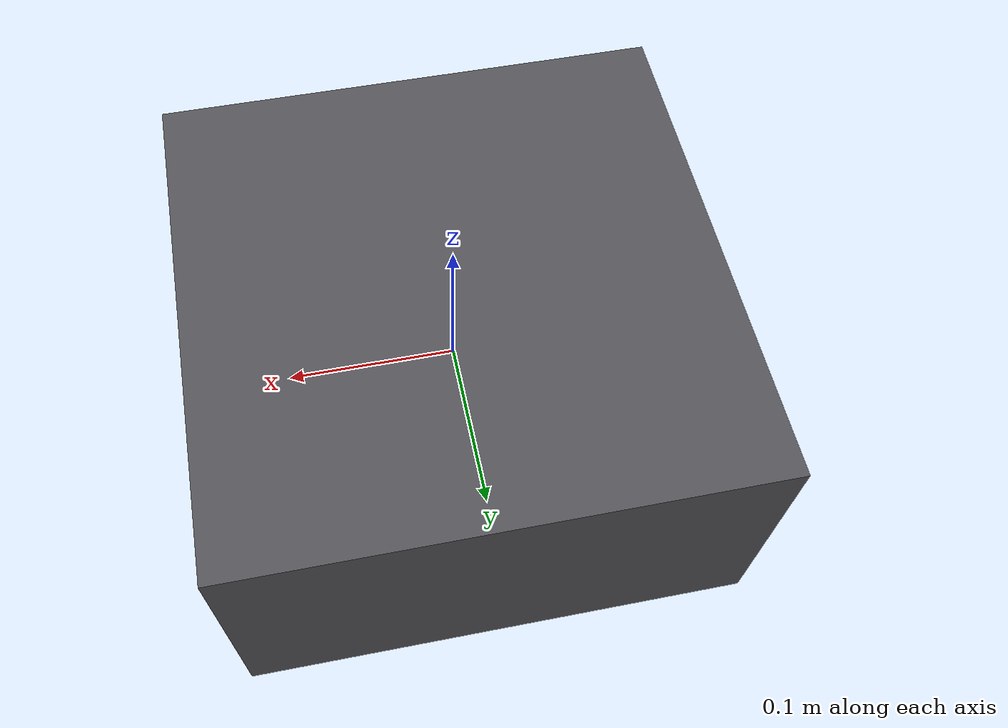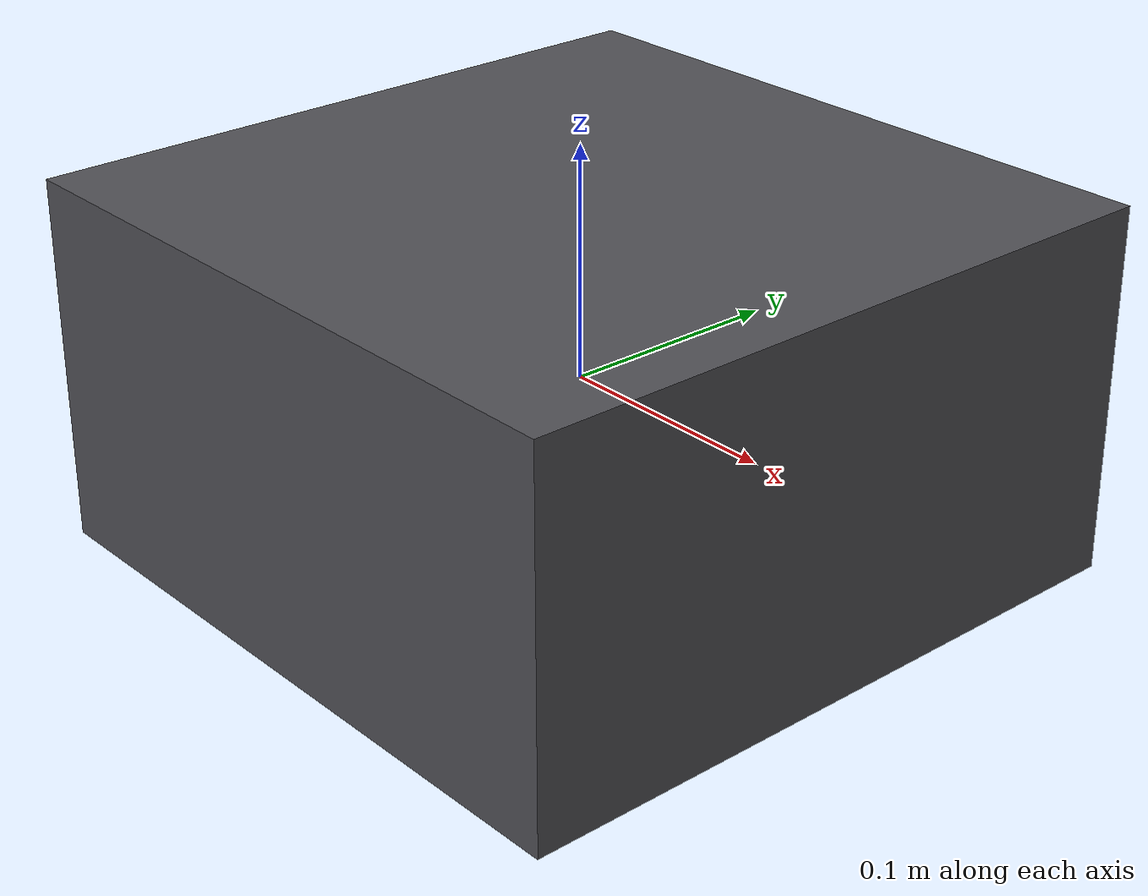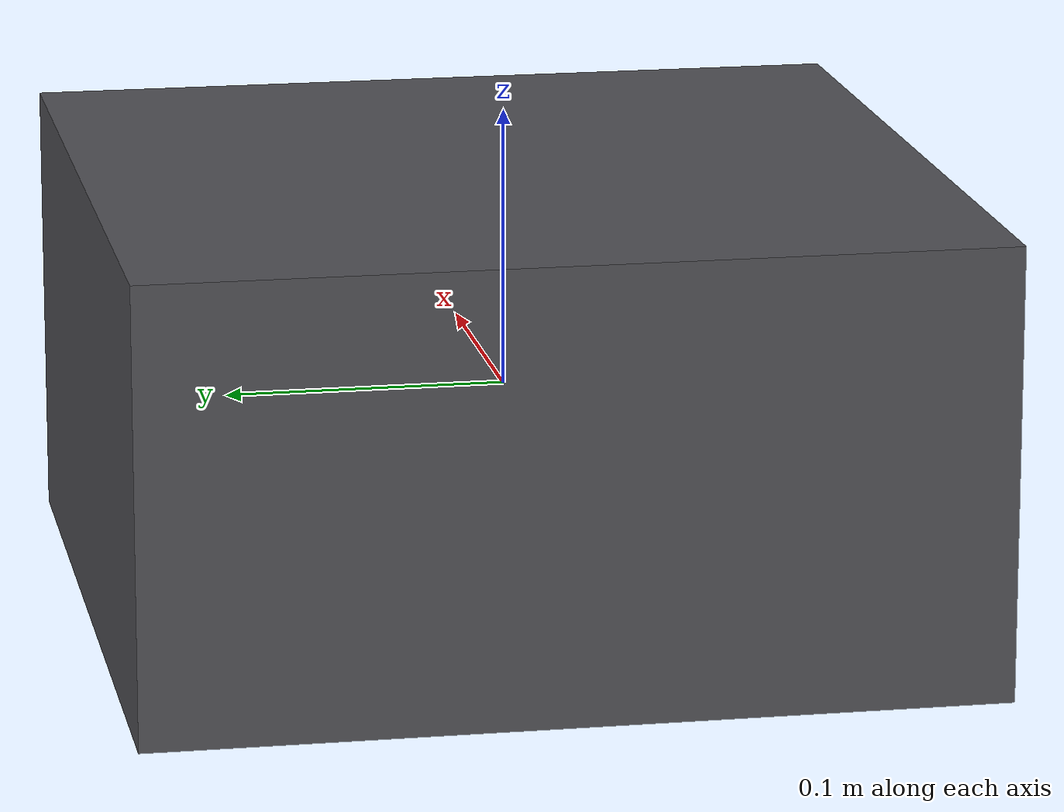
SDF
<?xml version="1.0"?>
<sdf version="1.6">
  <model name="arm_platform">
    <static>true</static>
    <link name="link">
      <inertial>
        <mass>8.000000</mass>
        <inertia>
          <ixx>0.077066667</ixx>
          <ixy>0</ixy>
          <ixz>0</ixz>
          <iyy>0.077066667</iyy>
          <iyz>0</iyz>
          <izz>0.120000000</izz>
        </inertia>
      </inertial>
      <collision name="collision">
        <geometry>
          <box>
            <size>0.300000 0.300000 0.160000</size>
          </box>
        </geometry>
      </collision>
      <visual name="visual">
        <geometry>
          <box>
            <size>0.300000 0.300000 0.160000</size>
          </box>
        </geometry>
        <material>
          <ambient>0.32 0.32 0.34 1</ambient>
          <diffuse>0.32 0.32 0.34 1</diffuse>
        </material>
      </visual>
    </link>
  </model>
</sdf>
